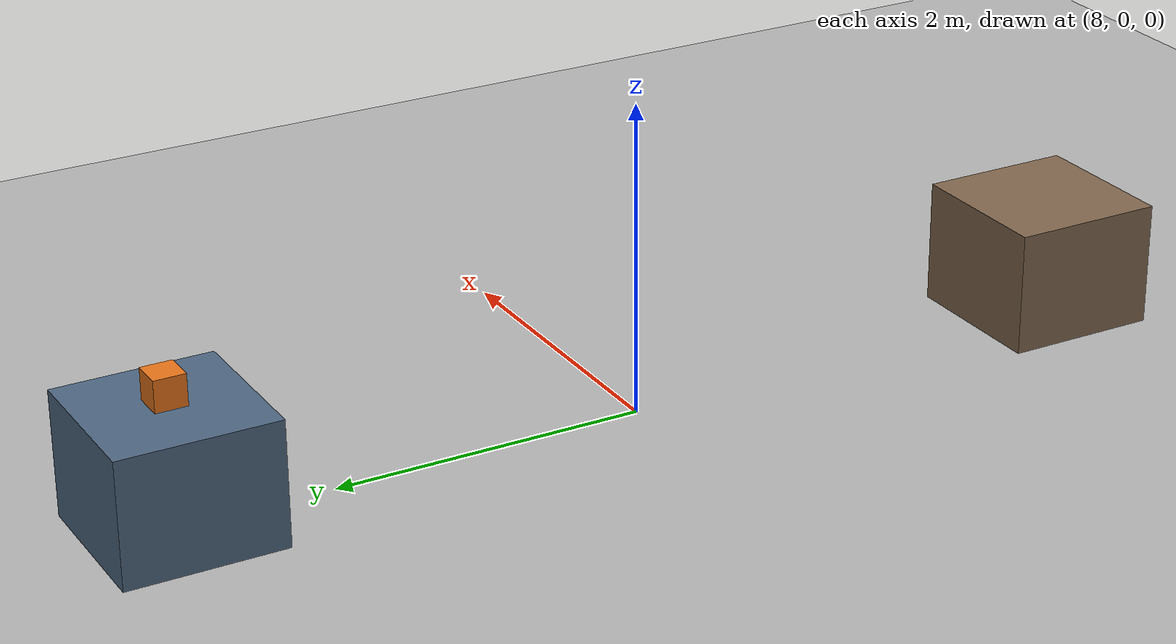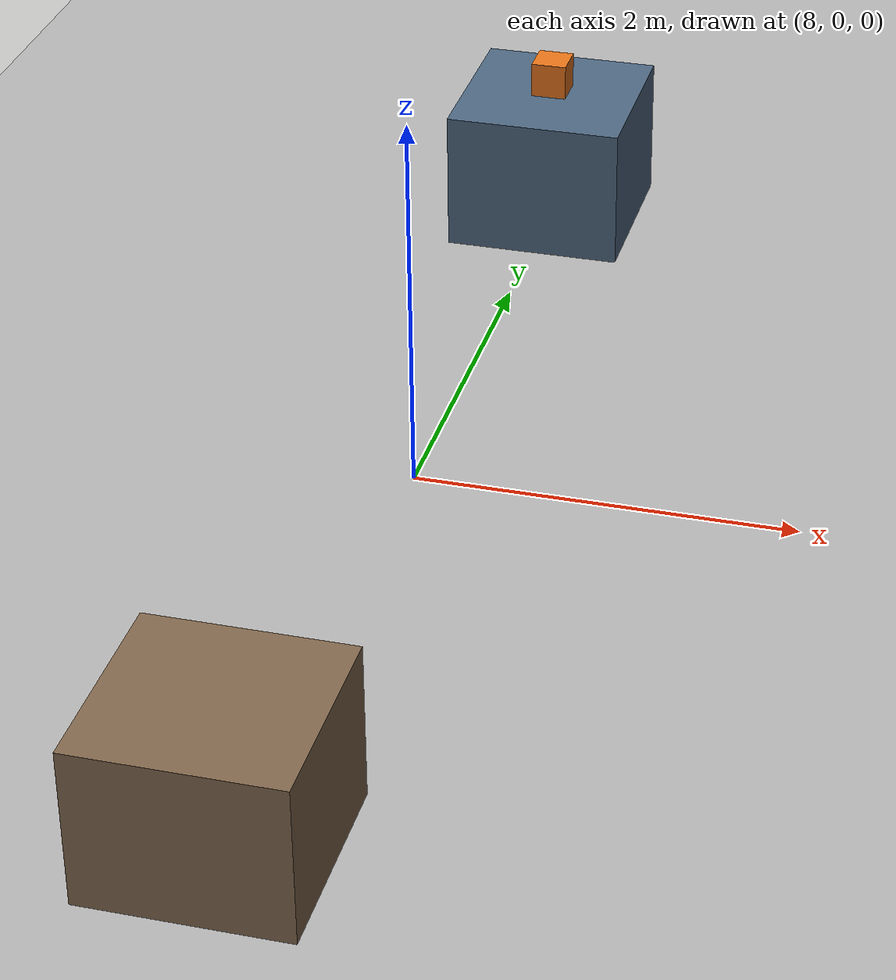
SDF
<?xml version='1.0' encoding='utf-8'?>
<sdf version="1.8">
  <!-- 공통 시험 월드: 로봇은 launch에서 생성한다. 원점 주변은 빈 주행 구역, x=8 쪽은 작업 구역이다. -->
    <world name="ax_test">
    <plugin filename="gz-sim-physics-system" name="gz::sim::systems::Physics" />
    <plugin filename="gz-sim-user-commands-system" name="gz::sim::systems::UserCommands" />
    <plugin filename="gz-sim-scene-broadcaster-system" name="gz::sim::systems::SceneBroadcaster" />
    <plugin filename="gz-sim-sensors-system" name="gz::sim::systems::Sensors">
      <render_engine>ogre2</render_engine>
    </plugin>
    <plugin filename="gz-sim-imu-system" name="gz::sim::systems::Imu" />
    <plugin filename="gz-sim-contact-system" name="gz::sim::systems::Contact" />
    <!-- 물리 적분 간격 0.001 s와 목표 실시간 배율 1.0. 실제 처리 속도는 PC 성능과 센서 부하에 따라 달라진다. -->
    <physics name="drive_test_physics" type="ode">
      <max_step_size>0.001</max_step_size>
      <real_time_factor>1.0</real_time_factor>
      <real_time_update_rate>1000</real_time_update_rate>
    </physics>
    <gravity>0 0 -9.80665</gravity>
    <light name="sun" type="directional">
      <pose>0 0 10 0 0 0</pose>
      <diffuse>0.8 0.8 0.8 1</diffuse>
      <specular>0.2 0.2 0.2 1</specular>
      <direction>-0.5 0.1 -0.9</direction>
    </light>
    <!-- 30×30 m 바닥. 주행 구역에 숨겨진 벽이나 고정 장애물은 배치하지 않는다. -->
    <model name="ground_plane">
      <static>true</static>
      <link name="ground">
        <collision name="ground_collision">
          <geometry>
            <plane>
              <normal>0 0 1</normal>
              <size>30 30</size>
            </plane>
          </geometry>
          <surface>
            <friction>
              <ode>
                <mu>1.0</mu>
                <mu2>1.0</mu2>
              </ode>
            </friction>
          </surface>
        </collision>
        <visual name="ground_visual">
          <geometry>
            <plane>
              <normal>0 0 1</normal>
              <size>30 30</size>
            </plane>
          </geometry>
          <material>
            <ambient>0.6 0.6 0.6 1</ambient>
            <diffuse>0.7 0.7 0.7 1</diffuse>
          </material>
        </visual>
      </link>
    </model>
    <!-- 집기 시험 작업대: 중심 (8, 3), 높이 0.8 m. 초기 로봇 위치에서 이곳으로 자동 이동하지는 않는다. -->
    <model name="station_src">
      <static>true</static>
      <pose>8 3 0.4 0 0 0</pose>
      <link name="table">
        <collision name="table_collision">
          <geometry>
            <box>
              <size>1.0 1.0 0.8</size>
            </box>
          </geometry>
        </collision>
        <visual name="table_visual">
          <geometry>
            <box>
              <size>1.0 1.0 0.8</size>
            </box>
          </geometry>
          <material>
            <diffuse>0.3 0.4 0.5 1</diffuse>
          </material>
        </visual>
      </link>
    </model>
    <!-- 배치 시험 작업대: 중심 (8, -3), 높이 0.8 m. -->
    <model name="station_dst">
      <static>true</static>
      <pose>8 -3 0.4 0 0 0</pose>
      <link name="table">
        <collision name="table_collision">
          <geometry>
            <box>
              <size>1.0 1.0 0.8</size>
            </box>
          </geometry>
        </collision>
        <visual name="table_visual">
          <geometry>
            <box>
              <size>1.0 1.0 0.8</size>
            </box>
          </geometry>
          <material>
            <diffuse>0.5 0.4 0.3 1</diffuse>
          </material>
        </visual>
      </link>
    </model>
    <!-- 0.2 m 정육면체, 0.5 kg. 초기 바닥면을 작업대보다 0.01 m 높여 시작 시 관통을 피한다. -->
    <model name="test_box">
      <pose>8 3 0.91 0 0 0</pose>
      <link name="box">
        <inertial>
          <mass>0.5</mass>
          <inertia>
            <ixx>0.003333333333</ixx>
            <iyy>0.003333333333</iyy>
            <izz>0.003333333333</izz>
          </inertia>
        </inertial>
        <collision name="box_collision">
          <geometry>
            <box>
              <size>0.2 0.2 0.2</size>
            </box>
          </geometry>
        </collision>
        <visual name="box_visual">
          <geometry>
            <box>
              <size>0.2 0.2 0.2</size>
            </box>
          </geometry>
          <material>
            <diffuse>0.9 0.45 0.1 1</diffuse>
          </material>
        </visual>
      </link>
    </model>
  </world>
</sdf>
